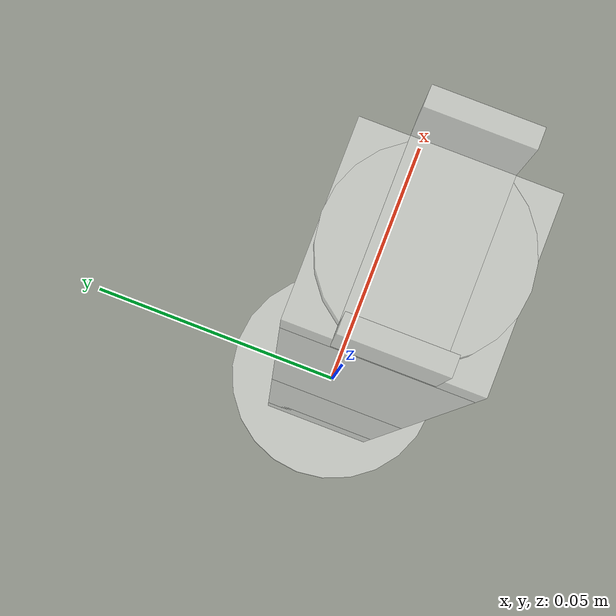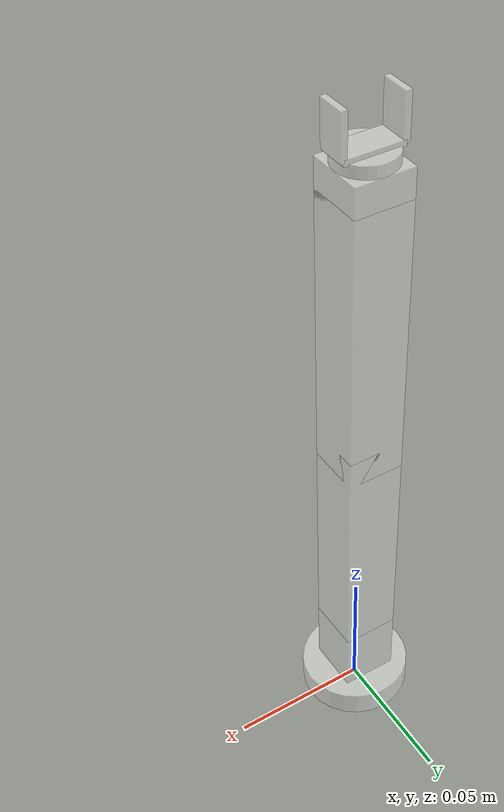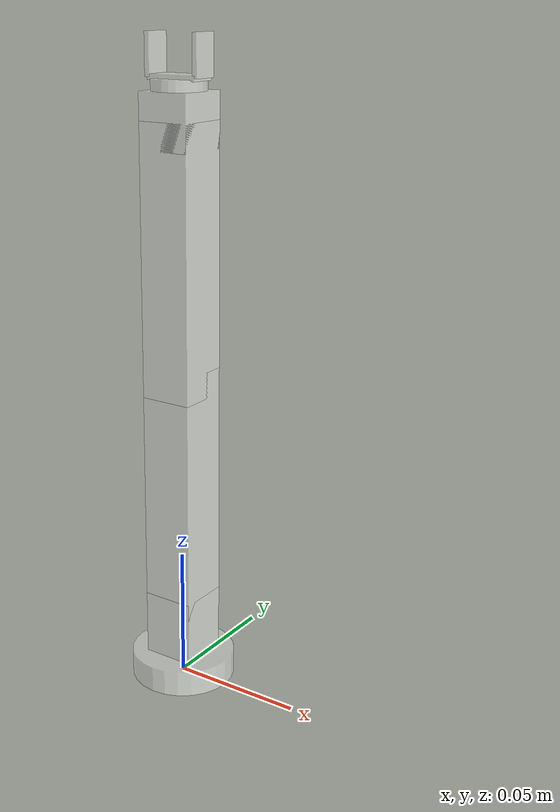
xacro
<?xml version="1.0"?>
<robot name="simple_arm" xmlns:xacro="http://www.ros.org/wiki/xacro">

  <link name="world"/>
  <xacro:include filename="arm.urdf.xacro" />
  <xacro:include filename="gripper.urdf.xacro" />

  <joint name="fixed" type="fixed">
    <parent link="world"/>
    <child link="base"/>
  </joint>

  <joint name="arm_to_gripper" type="fixed">
    <parent link="link5"/>
    <child link="gripper_base"/>
  </joint>

  <xacro:include filename="robot.transmission.xacro" />
  <xacro:include filename="robot.gazebo.xacro" />

</robot>

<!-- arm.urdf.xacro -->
<robot xmlns:xacro="http://www.ros.org/wiki/xacro">

  <link name="base">
    <collision>
      <origin rpy="0 0 0" xyz="0 0 0.005"/>
      <geometry>
        <cylinder length="0.01" radius="0.02"/>
      </geometry>
    </collision>
    <visual>
      <origin rpy="0 0 0" xyz="0 0 0.005"/>
      <geometry>
        <cylinder length="0.01" radius="0.02"/>
      </geometry>
      <material name="white">
        <color rgba="1 1 1 0.5"/>
      </material>
    </visual>
    <inertial>
      <origin rpy="0 0 0" xyz="0 0 0.005"/>
      <mass value="1.0"/>
      <inertia ixx="0.00014" ixy="0.0" ixz="0.0"
               iyy="0.00014" iyz="0.0"
               izz="0.000266"/>
    </inertial>
  </link>

  <link name="link1">
    <collision>
      <origin rpy="0 0 0" xyz="0 0 0.01"/>
      <geometry>
        <box size="0.02 0.02 0.03"/>
      </geometry>
    </collision>
    <visual>
      <origin rpy="0 0 0" xyz="0 0 0.01"/>
      <geometry>
        <box size="0.02 0.02 0.03"/>
      </geometry>
      <material name="white">
        <color rgba="1 1 1 0.5"/>
      </material>
    </visual>
    <inertial>
      <origin rpy="0 0 0" xyz="0 0 0"/>
      <mass value="1.0"/>
      <inertia ixx="0.000108" ixy="0.0" ixz="0.0"
               iyy="0.000108" iyz="0.0"
               izz="0.000066"/>
    </inertial>
  </link>

  <link name="link2">
    <collision>
      <origin rpy="0 0 0" xyz="0 0 0.045"/>
      <geometry>
        <box size="0.02 0.02 0.1"/>
      </geometry>
    </collision>
    <visual>
      <origin rpy="0 0 0" xyz="0 0 0.045"/>
      <geometry>
        <box size="0.02 0.02 0.1"/>
      </geometry>
      <material name="gray">
        <color rgba="1 1 1 0.5"/>
      </material>
    </visual>
    <inertial>
      <origin rpy="0 0 0" xyz="0 0 0"/>
      <mass value="0.6"/>
      <inertia ixx="0.00052" ixy="0.0" ixz="0.0"
               iyy="0.00052" iyz="0.0"
               izz="0.00004"/>
    </inertial>
  </link>

  <link name="link3">
    <collision>
      <origin rpy="0 0 0" xyz="0 0 0.045"/>
      <geometry>
        <box size="0.02 0.02 0.1"/>
      </geometry>
    </collision>
    <visual>
      <origin rpy="0 0 0" xyz="0 0 0.045"/>
      <geometry>
        <box size="0.02 0.02 0.1"/>
      </geometry>
      <material name="gray">
        <color rgba="1 1 1 0.5"/>
      </material>
    </visual>
    <inertial>
      <origin rpy="0 0 0" xyz="0 0 0"/>
      <mass value="0.6"/>
      <inertia ixx="0.00052" ixy="0.0" ixz="0.0"
               iyy="0.00052" iyz="0.0"
               izz="0.00004"/>
    </inertial>
  </link>

  <link name="link4">
    <collision>
      <origin rpy="0 0 0" xyz="0 0 0.005"/>
      <geometry>
        <box size="0.02 0.02 0.02"/>
      </geometry>
    </collision>
    <visual>
      <origin rpy="0 0 0" xyz="0 0 0.005"/>
      <geometry>
        <box size="0.02 0.02 0.02"/>
      </geometry>
      <material name="gray">
        <color rgba="1 1 1 0.5"/>
      </material>
    </visual>
    <inertial>
      <origin rpy="0 0 0" xyz="0 0 0"/>
      <mass value="0.3"/>
      <inertia ixx="0.00002" ixy="0.0" ixz="0.0"
               iyy="0.00002" iyz="0.0"
               izz="0.00002"/>
    </inertial>
  </link>

  <link name="link5">
    <collision>
      <origin rpy="0 0 0" xyz="0 0 0.003"/>
      <geometry>
        <cylinder length="0.006" radius="0.01"/>
      </geometry>
    </collision>
    <visual>
      <origin rpy="0 0 0" xyz="0 0 0.003"/>
      <geometry>
        <cylinder length="0.006" radius="0.01"/>
      </geometry>
      <material name="gray">
        <color rgba="1 1 1 0.5"/>
      </material>
    </visual>
    <inertial>
      <origin rpy="0 0 0" xyz="0 0 0"/>
      <mass value="0.2"/>
      <inertia ixx="0.00000726" ixy="0.0" ixz="0.0"
               iyy="0.00000726" iyz="0.0"
               izz="0.0000133"/>
    </inertial>
  </link>

  <joint name="joint1" type="revolute">
    <parent link="base"/>
    <child link="link1"/>
    <axis xyz="0 0 1"/>
    <origin rpy="0 0 0" xyz="0 0 0.01"/>
    <limit effort="10000" lower="-3.14" upper="3.14" velocity="0.5"/>
  </joint>

  <joint name="joint2" type="revolute">
    <parent link="link1"/>
    <child link="link2"/>
    <axis xyz="0 1 0"/>
    <origin rpy="0 0 0" xyz="0 0 0.02"/>
    <limit effort="10000" lower="-1.0" upper="1.0" velocity="0.5"/>
  </joint>

  <joint name="joint3" type="revolute">
    <parent link="link2"/>
    <child link="link3"/>
    <axis xyz="0 1 0"/>
    <origin rpy="0 0 0" xyz="0 0 0.09"/>
    <limit effort="10000" lower="-1.0" upper="1.0" velocity="0.5"/>
  </joint>

  <joint name="joint4" type="revolute">
    <parent link="link3"/>
    <child link="link4"/>
    <axis xyz="0 1 0"/>
    <origin rpy="0 0 0" xyz="0 0 0.09"/>
    <limit effort="10000" lower="-1.0" upper="1.0" velocity="0.5"/>
  </joint>

  <joint name="joint5" type="revolute">
    <parent link="link4"/>
    <child link="link5"/>
    <axis xyz="0 0 1"/>
    <origin rpy="0 0 0" xyz="0 0 0.013"/>
    <limit effort="10000" lower="-3.14" upper="3.14" velocity="0.5"/>
  </joint>

</robot>

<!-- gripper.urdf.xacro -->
<robot xmlns:xacro="http://www.ros.org/wiki/xacro">

  <link name="gripper_base">
    <collision>
      <origin rpy="0 0 0" xyz="0 0 0.0065"/>
      <geometry>
        <box size="0.02 0.01 0.002"/>
      </geometry>
    </collision>
    <visual>
      <origin rpy="0 0 0" xyz="0 0 0.0065"/>
      <geometry>
        <box size="0.02 0.01 0.002"/>
      </geometry>
      <material name="gray">
        <color rgba="1 1 1 0.5"/>
      </material>
    </visual>
    <inertial>
      <origin rpy="0 0 0" xyz="0 0 0"/>
      <mass value="0.2"/>
      <inertia ixx="0.00000173" ixy="0.0" ixz="0.0"
               iyy="0.00000673" iyz="0.0"
               izz="0.00000833"/>
    </inertial>
  </link>

  <link name="finger1">
    <collision>
      <origin rpy="0 0 0" xyz="0.01 0 0.014"/>
      <geometry>
        <box size="0.002 0.01 0.015"/>
      </geometry>
    </collision>
    <visual>
      <origin rpy="0 0 0" xyz="0.01 0 0.014"/>
      <geometry>
        <box size="0.002 0.01 0.015"/>
      </geometry>
      <material name="gray">
        <color rgba="1 1 1 0.5"/>
      </material>
    </visual>
    <inertial>
      <origin rpy="0 0 0" xyz="0 0 0"/>
      <mass value="0.1"/>
      <inertia ixx="0.0000027" ixy="0.0" ixz="0.0"
               iyy="0.000001908" iyz="0.0"
               izz="0.00000086"/>
    </inertial>
  </link>

  <link name="finger2">
    <collision>
      <origin rpy="0 0 0" xyz="-0.01 0 0.014"/>
      <geometry>
        <box size="0.002 0.01 0.015"/>
      </geometry>
    </collision>
    <visual>
      <origin rpy="0 0 0" xyz="-0.01 0 0.014"/>
      <geometry>
        <box size="0.002 0.01 0.015"/>
      </geometry>
      <material name="gray">
        <color rgba="1 1 1 0.5"/>
      </material>
    </visual>
    <inertial>
      <origin rpy="0 0 0" xyz="0 0 0"/>
      <mass value="0.1"/>
      <inertia ixx="0.0000027" ixy="0.0" ixz="0.0"
               iyy="0.000001908" iyz="0.0"
               izz="0.00000086"/>
    </inertial>
  </link>

  <joint name="joint6" type="prismatic">
    <parent link="gripper_base"/>
    <child link="finger1"/>
    <limit effort="10000.0" lower="0.0" upper="0.008" velocity="100.0"/>
    <origin rpy="0 0 0" xyz="0 0 0"/>
    <axis xyz="-1 0 0" />
  </joint>

  <joint name="joint7" type="prismatic">
    <parent link="gripper_base"/>
    <child link="finger2"/>
    <limit effort="10000.0" lower="0.0" upper="0.008" velocity="100.0"/>
    <origin rpy="0 0 0" xyz="0 0 0"/>
    <axis xyz="1 0 0" />
  </joint>

</robot>
